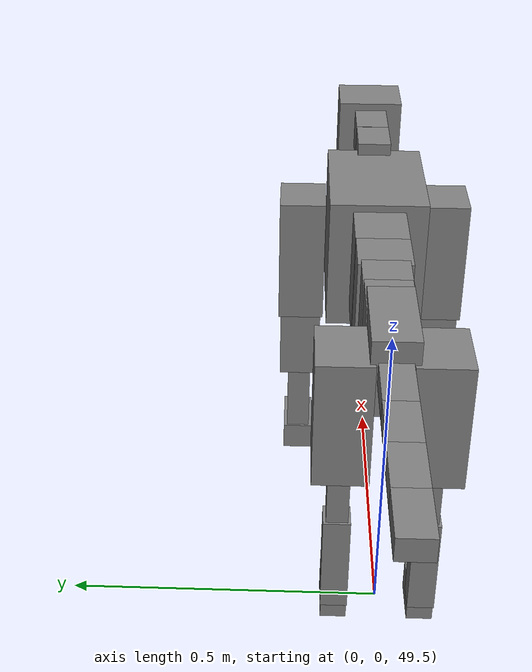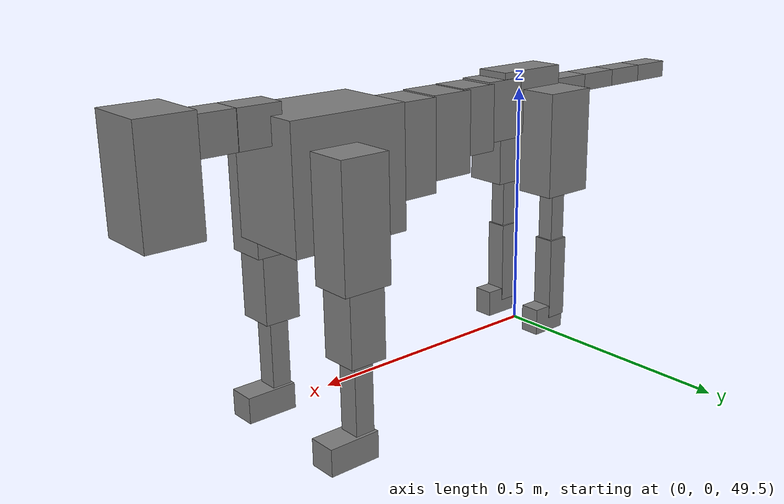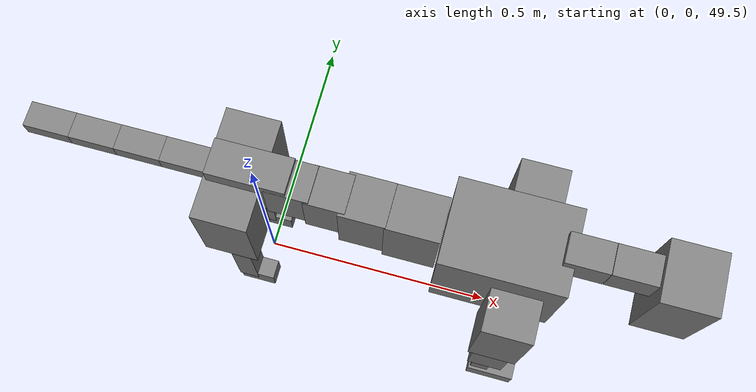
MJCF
<mujoco model="dog">

    <default>
        <joint armature="0.02" stiffness="1" damping="0.2" limited="true"/>
        <geom condim="3" friction="1 0.05 0.05" margin="0.01"/>
        <motor ctrllimited="true" ctrlrange="-1.0 1.0" forcelimited="true" gear="50"/>
    </default>

    <compiler inertiafromgeom="true" angle="radian"/>

    <option timestep="0.016" iterations="50" tolerance="1e-10" solver="Newton" jacobian="dense" cone="pyramidal"/>

    <size nconmax="20000" njmax="60000" nstack="5000000"/>
    <visual>
        <map force="0.1" zfar="30"/>
        <rgba haze="0.15 0.25 0.35 1"/>
        <quality shadowsize="2048"/>
        <global offwidth="800" offheight="800"/>
    </visual>

    <asset>
        <texture type="skybox" builtin="gradient" rgb1="0.3 0.5 0.7" rgb2="0 0 0" width="512" height="512"/>
        <texture name="texplane" type="2d" builtin="checker" rgb1=".2 .3 .4" rgb2=".1 0.15 0.2" width="512" height="512"
                 mark="cross" markrgb=".8 .8 .8"/>
        <texture name="texgeom" type="cube" builtin="flat" mark="cross" width="127" height="1278" rgb1="0.8 0.6 0.4"
                 rgb2="0.8 0.6 0.4" markrgb="1 1 1" random="0.01"/>

        <material name="matplane" reflectance="0.3" texture="texplane" texrepeat="1 1" texuniform="true"/>
        <material name="matgeom" texture="texgeom" texuniform="true" rgba="0.8 0.6 .4 1"/>
    </asset>

    <worldbody>
        <geom name="floor" pos="0 0 0" size="0 0 .25" type="plane" material="matplane" condim="3"/>

        <light directional="false" diffuse=".2 .2 .2" specular="0 0 0" pos="0 0 5" dir="0 0 -1" castshadow="false"/>
        <light mode="targetbodycom" target="torso" directional="false" diffuse=".8 .8 .8" specular="0.3 0.3 0.3"
               pos="0 0 4.0" dir="0 0 -1"/>

        <body name="root" pos="0 0 50">
            <freejoint name="root_1"/>
            <geom type="box" pos="0 0 -0.02" size="0.0774  0.0358  0.063" density="2030"/>

            <body name="spine1" pos="0.054 0 0">
                <joint name="spine1_y" axis="0 1 0" range="0 0.7" limited="true"/>
                <geom type="box" pos="0.02375 0 -0.03" size="0.04375  0.0375  0.05985" density="2030"/>

                <body name="spine2" pos="0.0612 0 0">
                    <joint name="spine2_y" axis="0 1 0" range="-0.15 0.15" limited="true"/>
                    <geom type="box" pos="0.03555  0  -0.04" size="0.04055  0.039  0.06615" density="2030"/>

                    <body name="spine3" pos="0.0730 0 0">
                        <joint name="spine3_y" axis="0 1 0" range="-0.15 0.15" limited="true"/>
                        <geom type="box" pos="0.03555  0  -0.057" size="0.04555  0.0445  0.081" density="2030"/>

                        <body name="spine4" pos="0.0780 0 0">
                            <joint name="spine4_y" axis="0 1 0" range="-0.15 0.15" limited="true"/>
                            <geom type="box" pos="0.05265  0  -0.07" size="0.05265  0.045  0.09135" density="2030"/>

                            <body name="torso" pos="0.1082 0 0">
                                <joint name="torso_y" axis="0 1 0" range="-0.15 0.15" limited="true"/>
                                <geom type="box" pos="0.11925  0  -0.085" size="0.11925  0.085  0.11745"
                                      density="2030"/>

                                <body name="neck1" pos="0.2160  0   0.0180">
                                    <joint name="neck1_y" axis="0 1 0" range="-1.2  -1" limited="true"/>
                                    <geom type="box" pos="0.0423  0  0" size="0.0423  0.03  0.036" density="2325"/>

                                    <body name="neck2" pos="0.0853  0  0">
                                        <joint name="neck2_y" axis="0 1 0" range="0.1  0" limited="true"/>
                                        <geom type="box" pos="0.0423  0  0" size="0.0423  0.03  0.036" density="2325"/>

                                        <body name="head" pos="0.0853  0  0">
                                            <joint name="head_y" axis="0 1 0" range="-0.3  -0.2" limited="true"/>
                                            <geom type="box" pos="0.0531  0  -0.055" size="0.0531  0.06  0.1044"
                                                  density="4030"/>

                                        </body>
                                    </body>
                                </body>

                                <body name="front_shoulder" pos="0.156  0   -0.0480">
                                    <joint name="front_shoulder_y" axis="0 1 0" range="-1 1.5" limited="true"/>
                                    <geom type="box" pos="0 0.13 -0.0903" size="0.0486  0.0416  0.1169" density="1158"/>
                                    <geom type="box" pos="0 -0.13 -0.0903" size="0.0486  0.0416  0.1169"
                                          density="1158"/>

                                    <body name="front_elbow" pos="0  0  -0.1806">
                                        <joint name="front_elbow_y" axis="0 1 0" range="-2 0" limited="true"/>
                                        <geom type="box" pos="0 0.13 -0.0806" size="0.0368  0.0376  0.0806"
                                              density="1081"/>
                                        <geom type="box" pos="0 -0.13 -0.0806" size="0.0368  0.0376  0.0806"
                                              density="1081"/>

                                        <body name="front_wrist" pos="0  0  -0.1612">
                                            <joint name="front_wrist_y" axis="0 1 0" range="-0.2 0" limited="true"/>
                                            <geom type="box" pos="0 0.13 -0.0769" size="0.0195  0.0216  0.0900"
                                                  density="1664"/>
                                            <geom type="box" pos="0 -0.13 -0.0769" size="0.0195  0.0216  0.0900"
                                                  density="1664"/>

                                            <body name="front_finger_end" pos="0  0  -0.1537">
                                                <joint name="front_finger_y" axis="0 1 0" range="-0.4 1"
                                                       limited="true"/>
                                                <geom type="box" pos="0.0280  0.13  -0.0114"
                                                      size="0.0513  0.0280  0.0264" density="1515"/>
                                                <geom type="box" pos="0.0280  -0.13  -0.0114"
                                                      size="0.0513  0.0280  0.0264" density="1515"/>

                                            </body>

                                        </body>
                                    </body>
                                </body>

                            </body>
                        </body>
                    </body>
                </body>
            </body>

            <body name="back_hip" pos="-0.03 0 -0.018">
                <joint name="back_hip_y" axis="0 1 0" range="-1.5 0.3" limited="true"/>
                <geom type="box" pos="0 0.07 -0.0819" size="0.0549  0.0430  0.1047" density="1154"/>
                <geom type="box" pos="0 -0.07 -0.0819" size="0.0549  0.0430  0.1047" density="1154"/>

                <body name="back_knee" pos="0  0  -0.1639">
                    <joint name="back_knee_y" axis="0 1 0" range="0 2.8" limited="true"/>
                    <geom type="box" pos="0 0.07 -0.0684" size="0.0176  0.0173  0.0839" density="1227"/>
                    <geom type="box" pos="0 -0.07 -0.0684" size="0.0176  0.0173  0.0839" density="1227"/>

                    <body name="back_ankle" pos="0  0  -0.1367">
                        <joint name="back_ankle_y" axis="0 1 0" range="-2.2 0" limited="true"/>
                        <geom type="box" pos="0 0.07 -0.0738" size="0.0216  0.0216  0.0851" density="1284"/>
                        <geom type="box" pos="0 -0.07 -0.0738" size="0.0216  0.0216  0.0851" density="1284"/>

                        <body name="back_toe_end" pos="0  0  -0.1477">
                            <joint name="back_toe_y" axis="0 1 0" range="-0.4 1" limited="true"/>
                            <geom type="box" pos="0.0207  0.07  -0.0122" size="0.0379  0.0207  0.0272" density="1515"/>
                            <geom type="box" pos="0.0207  -0.07  -0.0122" size="0.0379  0.0207  0.0272" density="1515"/>

                        </body>
                    </body>
                </body>
            </body>

            <body name="tail1" pos="-0.074 0 -0.006">
                <joint name="tail1_y" axis="0 1 0" range="-0.2 0.2" limited="true"/>
                <geom type="box" pos="-0.0536  0  0" size="0.045  0.025  0.0175" density="1587"/>

                <body name="tail2" pos="-0.09 0 0">
                    <joint name="tail2_y" axis="0 1 0" range="-0.2 0.2" limited="true"/>
                    <geom type="box" pos="-0.0536  0  0" size="0.045  0.025  0.0175" density="1587"/>

                    <body name="tail3" pos="-0.09 0 0">
                        <joint name="tail3_y" axis="0 1 0" range="-0.2 0.2" limited="true"/>
                        <geom type="box" pos="-0.0536  0  0" size="0.045  0.025  0.0175" density="1587"/>

                        <body name="tail4" pos="-0.09 0 0">
                            <joint name="tail4_y" axis="0 1 0" range="-0.2 0.2" limited="true"/>
                            <geom type="box" pos="-0.0536  0  0" size="0.045  0.025  0.0175" density="1587"/>

                        </body>
                    </body>
                </body>
            </body>
        </body>
    </worldbody>

    <actuator>
        <motor joint="spine1_y" forcerange="-150 150     "/>
        <motor joint="spine2_y" forcerange="-150 150     "/>
        <motor joint="spine3_y" forcerange="-150 150     "/>
        <motor joint="spine4_y" forcerange="-150 150     "/>
        <motor joint="torso_y" forcerange="-150 150     "/>
        <motor joint="neck1_y" forcerange="-100 100       "/>
        <motor joint="neck2_y" forcerange="-100 100       "/>
        <motor joint="head_y" forcerange="-150 150       "/>
        <motor joint="front_shoulder_y" forcerange="-195.13 182.01"/>
        <motor joint="front_elbow_y" forcerange="-181.94 191.44"/>
        <motor joint="front_wrist_y" forcerange="-106.56 66.43"/>
        <motor joint="front_finger_y" forcerange="-35.47 73.66"/>
        <motor joint="back_hip_y" forcerange="-394.51 379.20"/>
        <motor joint="back_knee_y" forcerange="-220.33 231.59"/>
        <motor joint="back_angle_y" forcerange="-141.62 103.79"/>
        <motor joint="back_toe_y" forcerange="-54.63 30.75"/>
        <motor joint="tail1_y" forcerange="-50 50     "/>
        <motor joint="tail2_y" forcerange="-50 50     "/>
        <motor joint="tail3_y" forcerange="-50 50     "/>
        <motor joint="tail4_y" forcerange="-50 50     "/>
    </actuator>
</mujoco>
